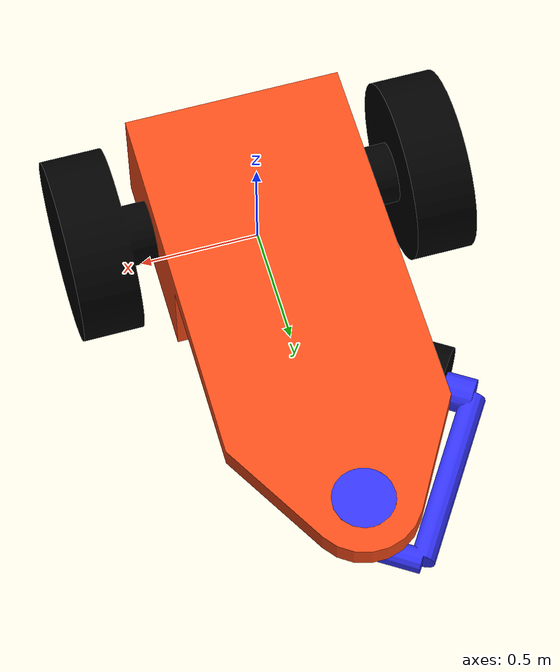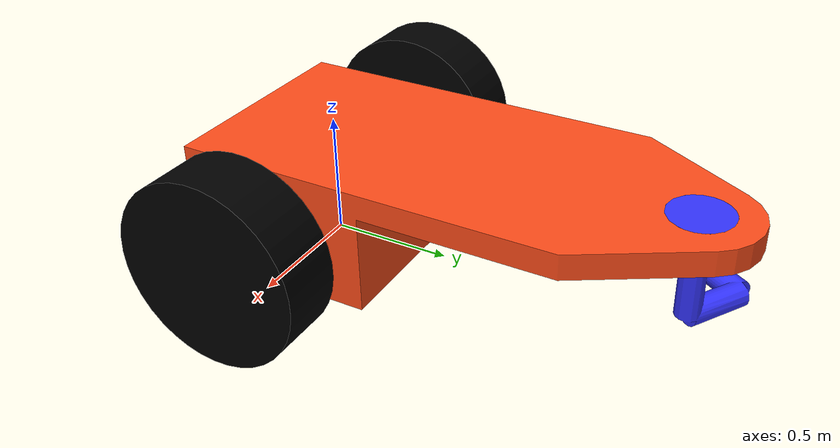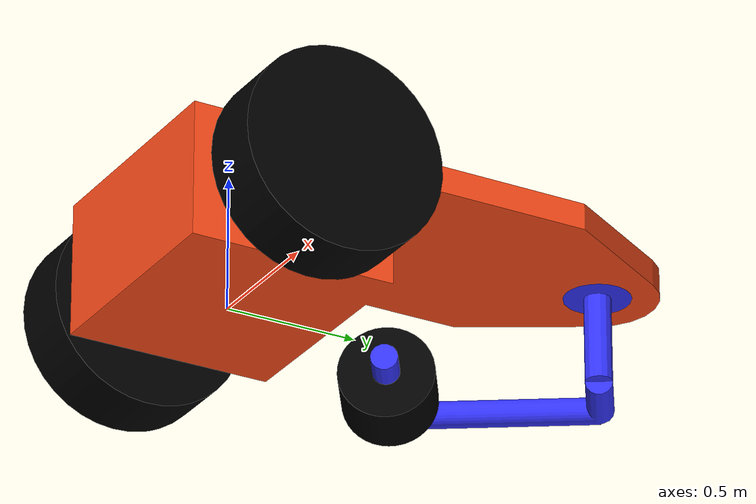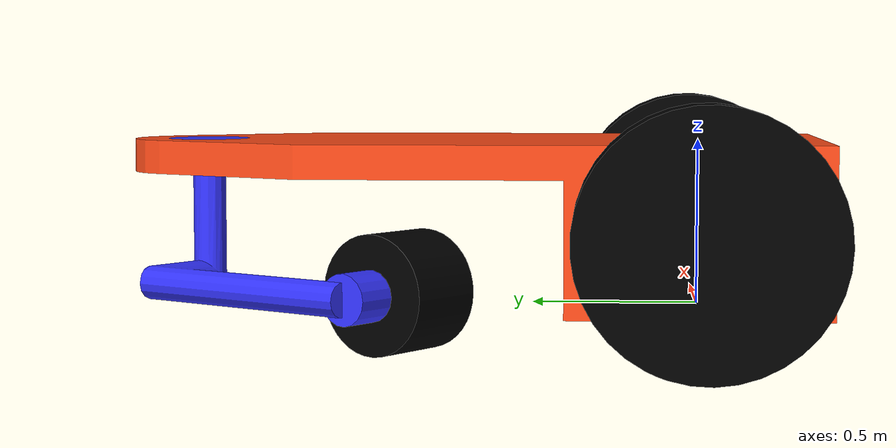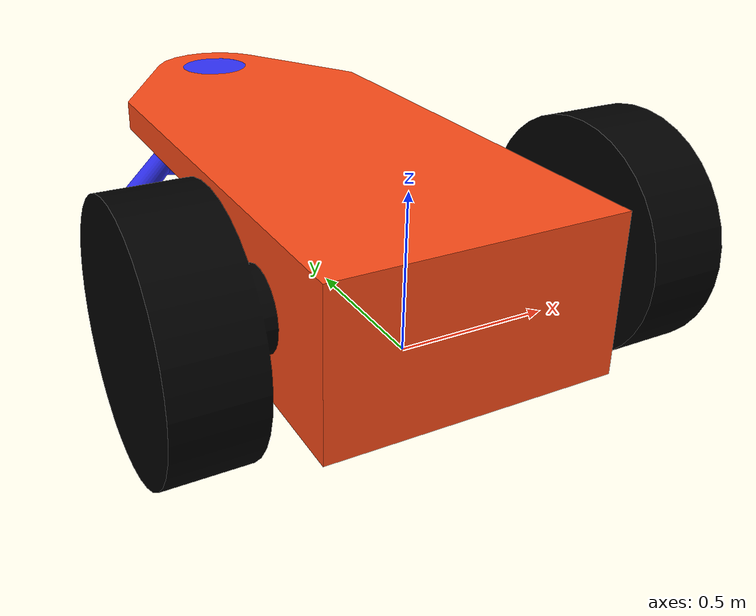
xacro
<?xml version="1.0"?>
<robot xmlns:xacro="http://www.ros.org/wiki/xacro" >

    <material name="white">
        <color rgba="1 1 1 1"/>
    </material>

    <material name="orange">
        <color rgba="1 0.3 0.1 1"/>
    </material>

    <material name="blue">
        <color rgba="0.2 0.2 1 1"/>
    </material>

    <material name="black">
        <color rgba="0 0 0 1"/>
    </material>

    <!--DUMMY: base link-->
    <link name="base_link"></link>

    <joint name="chassis_joint" type="fixed">
      <parent link="base_link"/>
      <child link="chassis_link"/>
      <origin xyz = "0 0 0.5"/>
    </joint>

    <link name="chassis_link">
    <inertial>
      <origin
        xyz="-2.7756E-17 0.22033 -0.20541"
        rpy="0 0 0" />
      <mass
        value="431.73" />
      <inertia
        ixx="103.67"
        ixy="2.3121E-14"
        ixz="1.1675E-15"
        iyy="37.727"
        iyz="-13.991"
        izz="120.86" />
    </inertial>
    <visual>
      <origin
        xyz="0 0 0"
        rpy="0 0 0" />
      <geometry>
        <mesh
          filename="package://new_eudald_massana/meshes/base_link.STL" />
      </geometry>
      <material name="orange"/>
    </visual>
    <collision>
      <origin
        xyz="0 0 0"
        rpy="0 0 0" />
      <geometry>
        <mesh
          filename="package://new_eudald_massana/meshes/base_link.STL" />
      </geometry>
    </collision>
  </link>

  <link name="left_wheel_link">
    <inertial>
      <origin xyz="0 0 -0.025" rpy="0 0 0" />
      <mass value="122.72" />
      <inertia
        ixx="5.2603"
        ixy="0"
        ixz="0"
        iyy="5.2603"
        iyz="0"
        izz="7.8617" />
    </inertial>
    <visual>
      <origin
        xyz="0 0 0"
        rpy="0 0 0" />
      <geometry>
        <mesh
          filename="package://new_eudald_massana/meshes/left_wheel_link.STL" />
      </geometry>
      <material name="black"/>
    </visual>
    <collision>
      <origin
        xyz="0 0 0"
        rpy="0 0 0" />
      <geometry>
        <mesh
          filename="package://new_eudald_massana/meshes/left_wheel_link.STL" />
      </geometry>
    </collision>
  </link>

  <joint name="left_wheel_joint" type="continuous">
    <origin
      xyz="-0.7 0 -0.25"
      rpy="-1.5708 0 1.5708" />
    <parent
      link="chassis_link" />
    <child
      link="left_wheel_link" />
    <axis
      xyz="0 0 -1" />
  </joint>

  <link
    name="right_wheel_link">
    <inertial>
      <origin
        xyz="0 0 0.025"
        rpy="0 0 0" />
      <mass
        value="122.72" />
      <inertia
        ixx="5.2603"
        ixy="0"
        ixz="0"
        iyy="5.2603"
        iyz="0"
        izz="7.8617" />
    </inertial>
    <visual>
      <origin
        xyz="0 0 0"
        rpy="0 0 0" />
      <geometry>
        <mesh
          filename="package://new_eudald_massana/meshes/right_wheel_link.STL" />
      </geometry>
      <material name="black"/>
    </visual>
    <collision>
      <origin
        xyz="0 0 0"
        rpy="0 0 0" />
      <geometry>
        <mesh
          filename="package://new_eudald_massana/meshes/right_wheel_link.STL" />
      </geometry>
    </collision>
  </link>
  <joint
    name="right_wheel_joint"
    type="continuous">
    <origin
      xyz="0.7 0 -0.25"
      rpy="-1.5708 0 1.5708" />
    <parent
      link="chassis_link" />
    <child
      link="right_wheel_link" />
    <axis
      xyz="0 0 1" />
  </joint>

  <link
    name="caster_base_link">
    <inertial>
      <origin
        xyz="-0.092812 -0.29573 -0.31161"
        rpy="0 0 0" />
      <mass
        value="19.859" />
      <inertia
        ixx="2.6905"
        ixy="-0.13364"
        ixz="-0.20909"
        iyy="0.90408"
        iyz="-0.66595"
        izz="2.5177" />
    </inertial>
    <visual>
      <origin
        xyz="0 0 0"
        rpy="0 0 0" />
      <geometry>
        <mesh
          filename="package://new_eudald_massana/meshes/caster_base_link.STL" />
      </geometry>
      <material name="blue"/>
    </visual>
    <collision>
      <origin
        xyz="0 0 0"
        rpy="0 0 0" />
      <geometry>
        <mesh
          filename="package://new_eudald_massana/meshes/caster_base_link.STL" />
      </geometry>
    </collision>
  </link>
  <joint
    name="caster_base_joint"
    type="continuous">
    <origin
      xyz="0 1.5 0"
      rpy="0 0 -0.57871" />
    <parent
      link="chassis_link" />
    <child
      link="caster_base_link" />
    <axis
      xyz="0 0 -1" />
  </joint>
  <link
    name="caster_wheel_link">
    <inertial>
      <origin
        xyz="0 0 5.5511E-17"
        rpy="0 0 0" />
      <mass
        value="22.089" />
      <inertia
        ixx="0.29798"
        ixy="0"
        ixz="0"
        iyy="0.29798"
        iyz="0"
        izz="0.36585" />
    </inertial>
    <visual>
      <origin
        xyz="0 0 0"
        rpy="0 0 0" />
      <geometry>
        <mesh
          filename="package://new_eudald_massana/meshes/caster_wheel_link.STL" />
      </geometry>
      <material name="black"/>
    </visual>
    <collision>
      <origin
        xyz="0 0 0"
        rpy="0 0 0" />
      <geometry>
        <mesh
          filename="package://new_eudald_massana/meshes/caster_wheel_link.STL" />
      </geometry>
    </collision>
  </link>
  <joint
    name="caster_wheel_joint"
    type="continuous">
    <origin
      xyz="0 -0.75 -0.425"
      rpy="0 1.5708 0" />
    <parent
      link="caster_base_link" />
    <child
      link="caster_wheel_link" />
    <axis
      xyz="0 0 -1" />
  </joint>

</robot>
